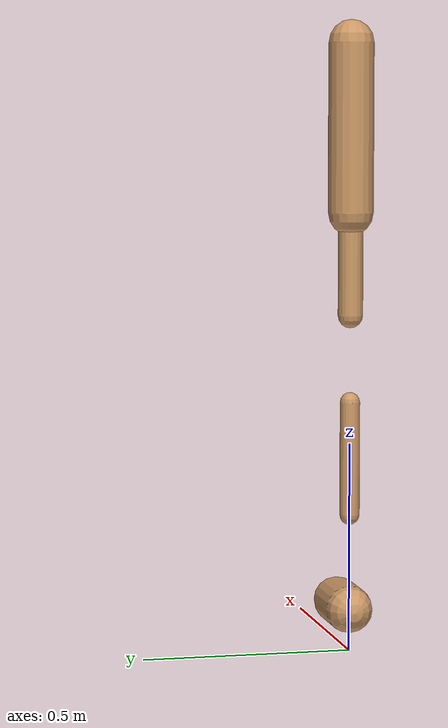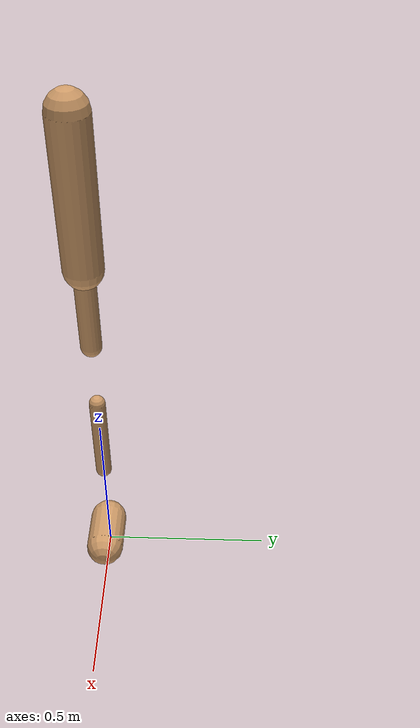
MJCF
<mujoco model="walker2d">
  <compiler angle="degree" coordinate="global" inertiafromgeom="true" />
  <default>
    <joint armature="0.01" damping=".1" limited="true" />
    <geom conaffinity="0" condim="3" contype="1" density="1000" friction="0.8 .1 .1" rgba="0.8 0.6 .4 1" />
  </default>
  <option integrator="RK4" timestep="0.002" />
  <worldbody>

    <body name="torso" pos="0 0 -0.4362635907262233">
      <joint armature="0" axis="1 0 0" damping="0" limited="false" name="ignorex" pos="0 0 0" stiffness="0" type="slide" />
      <joint armature="0" axis="0 0 1" damping="0" limited="false" name="ignorez" pos="0 0 0" ref="1.25" stiffness="0" type="slide" />
      <joint armature="0" axis="0 1 0" damping="0" limited="false" name="ignorey" pos="0 0 0" stiffness="0" type="hinge" />
      <geom fromto="0 0 1.45 0 0 1.05" name="torso_geom" size="0.05372233548777891" type="capsule" />
      <body name="thigh">
        <joint axis="0 -1 0" name="thigh_joint" pos="0 0 1.05" range="-150 0" type="hinge" />
        <geom fromto="0.0 0.0 1.05 0.0 0.0 0.8066511745545268" name="thigh_geom" size="0.029573689449139275" type="capsule" />
        <body name="leg" pos="0.0 0.0 0.20665117455452686">
          <joint axis="0 -1 0" name="leg_joint" pos="0 0 0.6" range="-150 0" type="hinge" />
          <geom fromto="0.0 0.0 0.6 0.0 0.0 0.32961241617169645" name="leg_geom" size="0.023658951559311418" type="capsule" />
          <body name="foot" pos="0.0 0.0 0.22961241617169645">
            <joint axis="0 -1 0" name="foot_joint" pos="0 0 0.1" range="-45 45" type="hinge" />
            <geom fromto="0.0 0.0 0.1 0.11968283521112633 0.0 0.1" name="foot_geom" size="0.05621508546748588" type="capsule" />
          </body>
        </body>
      </body>

      <body name="thigh_left">
        <joint axis="0 -1 0" name="thigh_left_joint" pos="0 0 1.05" range="-150 0" type="hinge" />
        <geom fromto="0.0 0.0 1.05 0.0 0.0 0.8066511745545268" name="thigh_left_geom" rgba=".7 .3 .6 1" size="0.029573689449139275" type="capsule" />
        <body name="leg_left" pos="0.0 0.0 0.20665117455452686">
          <joint axis="0 -1 0" name="leg_left_joint" pos="0 0 0.6" range="-150 0" type="hinge" />
          <geom fromto="0.0 0.0 0.6 0.0 0.0 0.32961241617169645" name="leg_left_geom" rgba=".7 .3 .6 1" size="0.023658951559311418" type="capsule" />
          <body name="foot_left" pos="0.0 0.0 0.22961241617169645">
            <joint axis="0 -1 0" name="foot_left_joint" pos="0 0 0.1" range="-45 45" type="hinge" />
            <geom fromto="0.0 0.0 0.1 0.11968283521112633 0.0 0.1" name="foot_left_geom" rgba=".7 .3 .6 1" size="0.05621508546748588" type="capsule" />
          </body>
        </body>
      </body>
    </body>
  </worldbody>
  <actuator>

    <motor ctrllimited="true" ctrlrange="-1.0 1.0" gear="100" joint="thigh_joint" />
    <motor ctrllimited="true" ctrlrange="-1.0 1.0" gear="100" joint="leg_joint" />
    <motor ctrllimited="true" ctrlrange="-1.0 1.0" gear="100" joint="foot_joint" />
    <motor ctrllimited="true" ctrlrange="-1.0 1.0" gear="100" joint="thigh_left_joint" />
    <motor ctrllimited="true" ctrlrange="-1.0 1.0" gear="100" joint="leg_left_joint" />
    <motor ctrllimited="true" ctrlrange="-1.0 1.0" gear="100" joint="foot_left_joint" />

  </actuator>
</mujoco>
